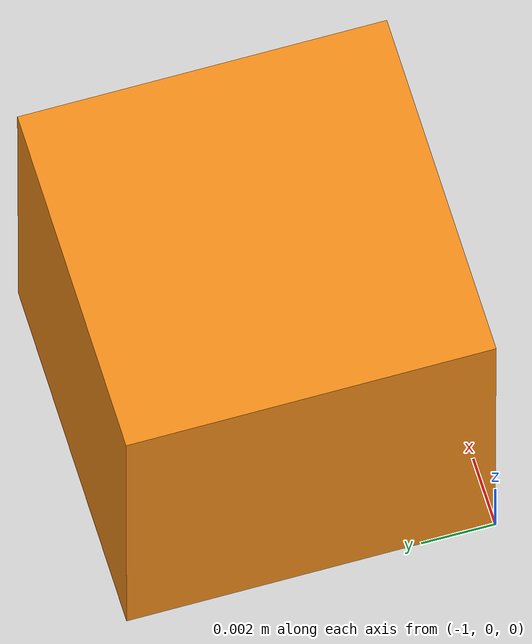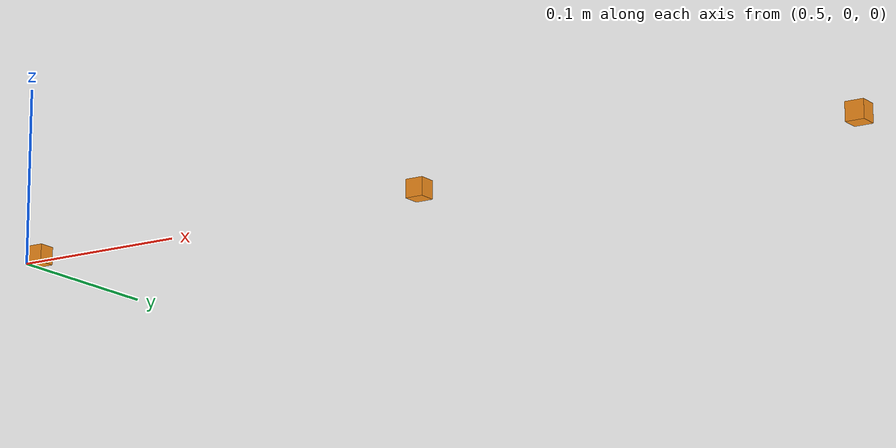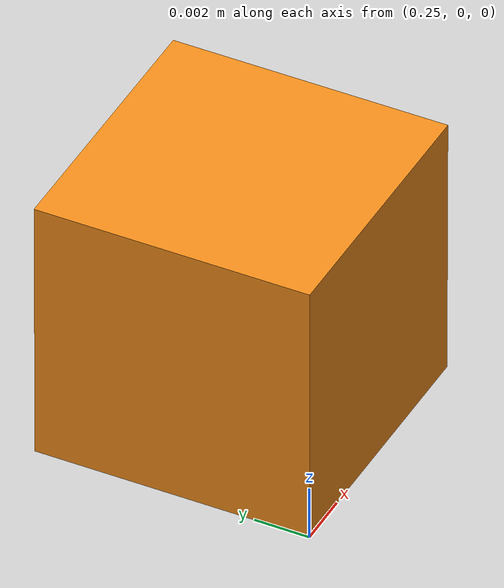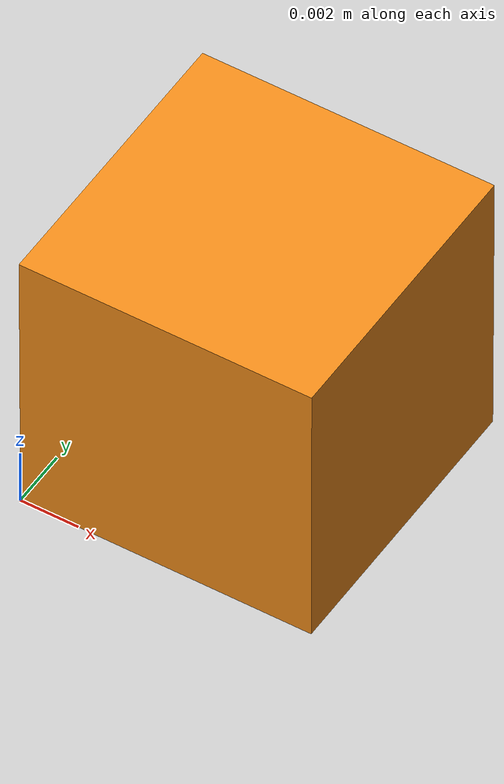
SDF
<?xml version='1.0'?>
<sdf version='1.6'>
  <model name='9_1cm_cubes'>
    <model name='1cm_cube_1'>
      <link name='cube'>
        <pose frame=''>0.005 0.005 0.005 0 0 0</pose>
        <visual name='visual'>
          <pose frame=''>0 0 0 0 0 0</pose>
          <geometry>
            <box>
              <size>0.01 0.01 0.01</size>
            </box>
          </geometry>
          <material>
            <lighting>1</lighting>
            <script>
              <uri>file://media/materials/scripts/caution.material</uri>
              <name>Caution/Orange3</name>
            </script>
            <ambient>1 1 1 1</ambient>
          </material>
          <cast_shadows>1</cast_shadows>
          <transparency>0</transparency>
        </visual>
        <collision name='collision'>
          <geometry>
            <box>
              <size>0.01 0.01 0.01</size>
            </box>
          </geometry>
          <pose frame=''>0 0 0 0 0 0</pose>
        </collision>
      </link>
      <static>1</static>
      <allow_auto_disable>1</allow_auto_disable>
      <pose frame=''>0 0 0 0 0 0</pose>
    </model>
    <model name='1cm_cube_2'>
      <link name='cube'>
        <pose frame=''>0.005 0.005 0.005 0 0 0</pose>
        <visual name='visual'>
          <pose frame=''>0 0 0 0 -0 0</pose>
          <geometry>
            <box>
              <size>0.01 0.01 0.01</size>
            </box>
          </geometry>
          <material>
            <lighting>1</lighting>
            <script>
              <uri>file://media/materials/scripts/caution.material</uri>
              <name>Caution/Orange3</name>
            </script>
            <ambient>1 1 1 1</ambient>
          </material>
          <cast_shadows>1</cast_shadows>
          <transparency>0</transparency>
        </visual>
        <collision name='collision'>
          <geometry>
            <box>
              <size>0.01 0.01 0.01</size>
            </box>
          </geometry>
          <pose frame=''>0 0 0 0 -0 0</pose>
        </collision>
      </link>
      <static>1</static>
      <allow_auto_disable>1</allow_auto_disable>
      <pose frame=''>-0.25 0 0 0 0 0</pose>
    </model>
    <model name='1cm_cube_3'>
      <link name='cube'>
        <pose frame=''>0.005 0.005 0.005 0 0 0</pose>
        <visual name='visual'>
          <pose frame=''>0 0 0 0 -0 0</pose>
          <geometry>
            <box>
              <size>0.01 0.01 0.01</size>
            </box>
          </geometry>
          <material>
            <lighting>1</lighting>
            <script>
              <uri>file://media/materials/scripts/caution.material</uri>
              <name>Caution/Orange3</name>
            </script>
            <ambient>1 1 1 1</ambient>
          </material>
          <cast_shadows>1</cast_shadows>
          <transparency>0</transparency>
        </visual>
        <collision name='collision'>
          <geometry>
            <box>
              <size>0.01 0.01 0.01</size>
            </box>
          </geometry>
          <pose frame=''>0 0 0 0 -0 0</pose>
        </collision>
      </link>
      <static>1</static>
      <allow_auto_disable>1</allow_auto_disable>
      <pose frame=''>-0.5 0 0 0 0 0</pose>
    </model>
    <model name='1cm_cube_4'>
      <link name='cube'>
        <pose frame=''>0.005 0.005 0.005 0 0 0</pose>
        <visual name='visual'>
          <pose frame=''>0 0 0 0 -0 0</pose>
          <geometry>
            <box>
              <size>0.01 0.01 0.01</size>
            </box>
          </geometry>
          <material>
            <lighting>1</lighting>
            <script>
              <uri>file://media/materials/scripts/caution.material</uri>
              <name>Caution/Orange3</name>
            </script>
            <ambient>1 1 1 1</ambient>
          </material>
          <cast_shadows>1</cast_shadows>
          <transparency>0</transparency>
        </visual>
        <collision name='collision'>
          <geometry>
            <box>
              <size>0.01 0.01 0.01</size>
            </box>
          </geometry>
          <pose frame=''>0 0 0 0 -0 0</pose>
        </collision>
      </link>
      <static>1</static>
      <allow_auto_disable>1</allow_auto_disable>
      <pose frame=''>-0.75 0 0 0 0 0</pose>
    </model>
    <model name='1cm_cube_5'>
      <link name='cube'>
        <pose frame=''>0.005 0.005 0.005 0 0 0</pose>
        <visual name='visual'>
          <pose frame=''>0 0 0 0 -0 0</pose>
          <geometry>
            <box>
              <size>0.01 0.01 0.01</size>
            </box>
          </geometry>
          <material>
            <lighting>1</lighting>
            <script>
              <uri>file://media/materials/scripts/caution.material</uri>
              <name>Caution/Orange3</name>
            </script>
            <ambient>1 1 1 1</ambient>
          </material>
          <cast_shadows>1</cast_shadows>
          <transparency>0</transparency>
        </visual>
        <collision name='collision'>
          <geometry>
            <box>
              <size>0.01 0.01 0.01</size>
            </box>
          </geometry>
          <pose frame=''>0 0 0 0 -0 0</pose>
        </collision>
      </link>
      <static>1</static>
      <allow_auto_disable>1</allow_auto_disable>
      <pose frame=''>-1 0 0 0 0 0</pose>
    </model>
    <model name='1cm_cube_6'>
      <link name='cube'>
        <pose frame=''>0.005 0.005 0.005 0 0 0</pose>
        <visual name='visual'>
          <pose frame=''>0 0 0 0 0 0</pose>
          <geometry>
            <box>
              <size>0.01 0.01 0.01</size>
            </box>
          </geometry>
          <material>
            <lighting>1</lighting>
            <script>
              <uri>file://media/materials/scripts/caution.material</uri>
              <name>Caution/Orange3</name>
            </script>
            <ambient>1 1 1 1</ambient>
          </material>
          <cast_shadows>1</cast_shadows>
          <transparency>0</transparency>
        </visual>
        <collision name='collision'>
          <geometry>
            <box>
              <size>0.01 0.01 0.01</size>
            </box>
          </geometry>
          <pose frame=''>0 0 0 0 -0 0</pose>
        </collision>
      </link>
      <static>1</static>
      <allow_auto_disable>1</allow_auto_disable>
      <pose frame=''>0.25 0 0 0 0 0</pose>
    </model>
    <model name='1cm_cube_7'>
      <link name='cube'>
        <pose frame=''>0.005 0.005 0.005 0 0 0</pose>
        <visual name='visual'>
          <pose frame=''>0 0 0 0 0 0</pose>
          <geometry>
            <box>
              <size>0.01 0.01 0.01</size>
            </box>
          </geometry>
          <material>
            <lighting>1</lighting>
            <script>
              <uri>file://media/materials/scripts/caution.material</uri>
              <name>Caution/Orange3</name>
            </script>
            <ambient>1 1 1 1</ambient>
          </material>
          <cast_shadows>1</cast_shadows>
          <transparency>0</transparency>
        </visual>
        <collision name='collision'>
          <geometry>
            <box>
              <size>0.01 0.01 0.01</size>
            </box>
          </geometry>
          <pose frame=''>0 0 0 0 -0 0</pose>
        </collision>
      </link>
      <static>1</static>
      <allow_auto_disable>1</allow_auto_disable>
      <pose frame=''>0.5 0 0 0 0 0</pose>
    </model>
    <model name='1cm_cube_8'>
      <link name='cube'>
        <pose frame=''>0.005 0.005 0.005 0 0 0</pose>
        <visual name='visual'>
          <pose frame=''>0 0 0 0 0 0</pose>
          <geometry>
            <box>
              <size>0.01 0.01 0.01</size>
            </box>
          </geometry>
          <material>
            <lighting>1</lighting>
            <script>
              <uri>file://media/materials/scripts/caution.material</uri>
              <name>Caution/Orange3</name>
            </script>
            <ambient>1 1 1 1</ambient>
          </material>
          <cast_shadows>1</cast_shadows>
          <transparency>0</transparency>
        </visual>
        <collision name='collision'>
          <geometry>
            <box>
              <size>0.01 0.01 0.01</size>
            </box>
          </geometry>
          <pose frame=''>0 0 0 0 -0 0</pose>
        </collision>
      </link>
      <static>1</static>
      <allow_auto_disable>1</allow_auto_disable>
      <pose frame=''>0.75 0 0 0 0 0</pose>
    </model>
    <model name='1cm_cube_9'>
      <link name='cube'>
        <pose frame=''>0.005 0.005 0.005 0 0 0</pose>
        <visual name='visual'>
          <pose frame=''>0 0 0 0 -0 0</pose>
          <geometry>
            <box>
              <size>0.01 0.01 0.01</size>
            </box>
          </geometry>
          <material>
            <lighting>1</lighting>
            <script>
              <uri>file://media/materials/scripts/caution.material</uri>
              <name>Caution/Orange3</name>
            </script>
            <ambient>1 1 1 1</ambient>
          </material>
          <cast_shadows>1</cast_shadows>
          <transparency>0</transparency>
        </visual>
        <collision name='collision'>
          <geometry>
            <box>
              <size>0.01 0.01 0.01</size>
            </box>
          </geometry>
          <pose frame=''>0 0 0 0 0 0</pose>
        </collision>
      </link>
      <static>1</static>
      <allow_auto_disable>1</allow_auto_disable>
      <pose frame=''>1 0 0 0 0 0</pose>
    </model>
    <static>1</static>
    <allow_auto_disable>1</allow_auto_disable>
    <pose frame=''>0 0 0 0 0 0</pose>
  </model>
</sdf>
